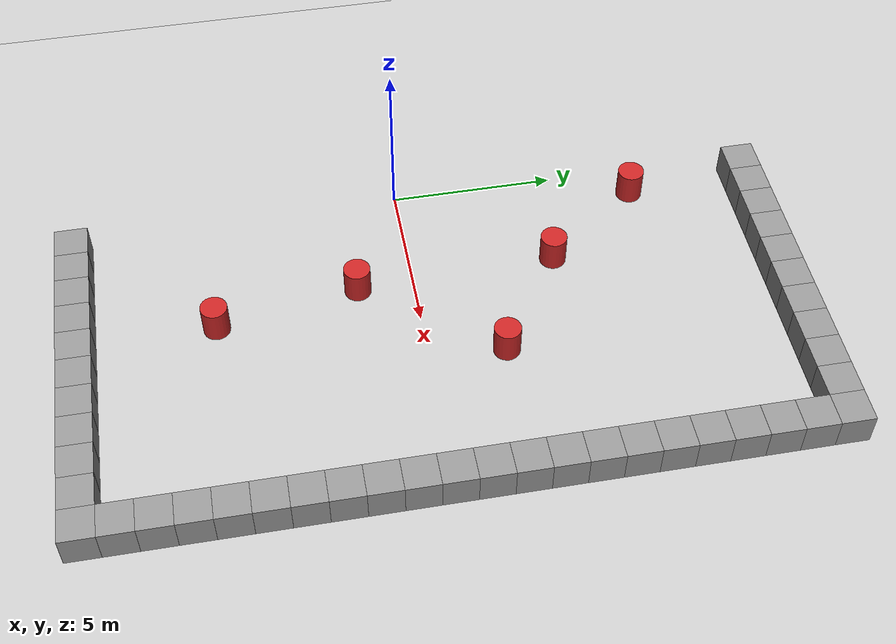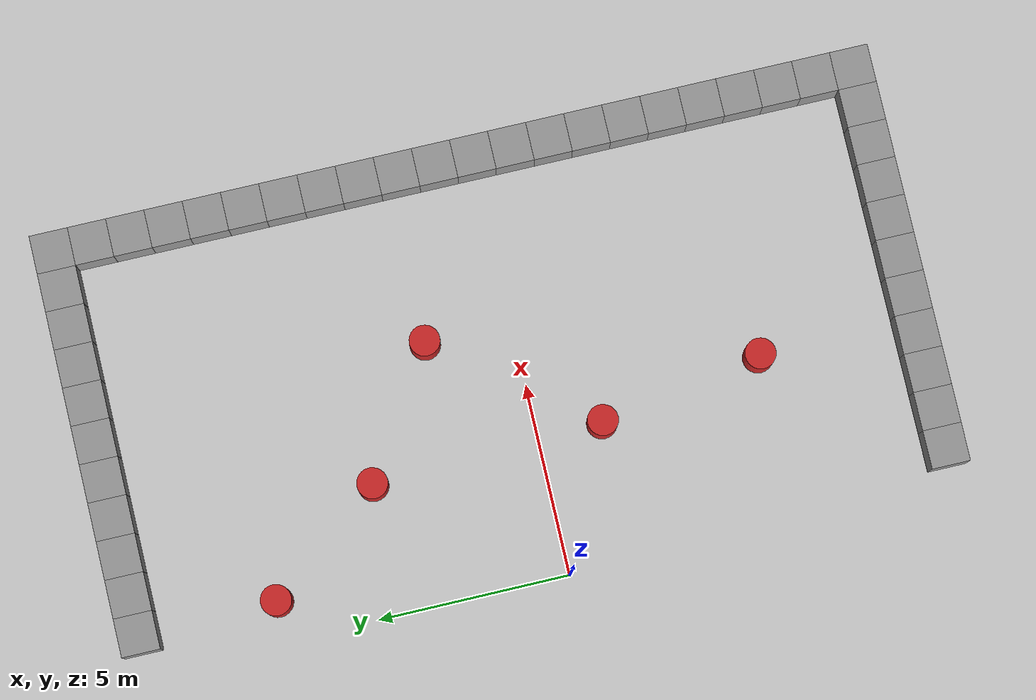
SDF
<sdf version="1.6">
 <world name="default">
  <model name="ground_plane">
   <static>1</static>
   <link name="link">
    <collision name="collision">
     <geometry><plane><normal>0 0 1</normal><size>100 100</size></plane></geometry>
     <surface><friction><ode><mu>100</mu><mu2>50</mu2></ode></friction></surface>
    </collision>
    <visual name="visual">
     <cast_shadows>0</cast_shadows>
     <geometry><plane><normal>0 0 1</normal><size>100 100</size></plane></geometry>
     <material>
      <script><uri>file://media/materials/scripts/gazebo.material</uri><name>Gazebo/Grey</name></script>
     </material>
    </visual>
    <velocity_decay><linear>0</linear><angular>0</angular></velocity_decay>
   </link>
  </model>
  <model name="unit_box_105">
   <pose>1 -10 0.5 0 -0 0</pose>
   <link name="link">
    <inertial>
     <mass>1</mass>
     <inertia><ixx>1</ixx><ixy>0</ixy><ixz>0</ixz><iyy>1</iyy><iyz>0</iyz><izz>1</izz></inertia>
    </inertial>
    <collision name="collision"><geometry><box><size>1 1 1</size></box></geometry></collision>
    <visual name="visual">
     <geometry><box><size>1 1 1</size></box></geometry>
     <material>
      <script><uri>file://media/materials/scripts/gazebo.material</uri><name>Gazebo/Grey</name></script>
     </material>
    </visual>
    <velocity_decay><linear>0</linear><angular>0</angular></velocity_decay>
   </link>
   <static>1</static>
  </model>
  <model name="unit_box_106">
   <pose>2 -10 0.5 0 -0 0</pose>
   <link name="link">
    <inertial>
     <mass>1</mass>
     <inertia><ixx>1</ixx><ixy>0</ixy><ixz>0</ixz><iyy>1</iyy><iyz>0</iyz><izz>1</izz></inertia>
    </inertial>
    <collision name="collision"><geometry><box><size>1 1 1</size></box></geometry></collision>
    <visual name="visual">
     <geometry><box><size>1 1 1</size></box></geometry>
     <material>
      <script><uri>file://media/materials/scripts/gazebo.material</uri><name>Gazebo/Grey</name></script>
     </material>
    </visual>
    <velocity_decay><linear>0</linear><angular>0</angular></velocity_decay>
   </link>
   <static>1</static>
  </model>
  <model name="unit_box_107">
   <pose>3 -10 0.5 0 -0 0</pose>
   <link name="link">
    <inertial>
     <mass>1</mass>
     <inertia><ixx>1</ixx><ixy>0</ixy><ixz>0</ixz><iyy>1</iyy><iyz>0</iyz><izz>1</izz></inertia>
    </inertial>
    <collision name="collision"><geometry><box><size>1 1 1</size></box></geometry></collision>
    <visual name="visual">
     <geometry><box><size>1 1 1</size></box></geometry>
     <material>
      <script><uri>file://media/materials/scripts/gazebo.material</uri><name>Gazebo/Grey</name></script>
     </material>
    </visual>
    <velocity_decay><linear>0</linear><angular>0</angular></velocity_decay>
   </link>
   <static>1</static>
  </model>
  <model name="unit_box_108">
   <pose>4 -10 0.5 0 -0 0</pose>
   <link name="link">
    <inertial>
     <mass>1</mass>
     <inertia><ixx>1</ixx><ixy>0</ixy><ixz>0</ixz><iyy>1</iyy><iyz>0</iyz><izz>1</izz></inertia>
    </inertial>
    <collision name="collision"><geometry><box><size>1 1 1</size></box></geometry></collision>
    <visual name="visual">
     <geometry><box><size>1 1 1</size></box></geometry>
     <material>
      <script><uri>file://media/materials/scripts/gazebo.material</uri><name>Gazebo/Grey</name></script>
     </material>
    </visual>
    <velocity_decay><linear>0</linear><angular>0</angular></velocity_decay>
   </link>
   <static>1</static>
  </model>
  <model name="unit_box_109">
   <pose>5 -10 0.5 0 -0 0</pose>
   <link name="link">
    <inertial>
     <mass>1</mass>
     <inertia><ixx>1</ixx><ixy>0</ixy><ixz>0</ixz><iyy>1</iyy><iyz>0</iyz><izz>1</izz></inertia>
    </inertial>
    <collision name="collision"><geometry><box><size>1 1 1</size></box></geometry></collision>
    <visual name="visual">
     <geometry><box><size>1 1 1</size></box></geometry>
     <material>
      <script><uri>file://media/materials/scripts/gazebo.material</uri><name>Gazebo/Grey</name></script>
     </material>
    </visual>
    <velocity_decay><linear>0</linear><angular>0</angular></velocity_decay>
   </link>
   <static>1</static>
  </model>
  <model name="unit_box_110">
   <pose>6 -10 0.5 0 -0 0</pose>
   <link name="link">
    <inertial>
     <mass>1</mass>
     <inertia><ixx>1</ixx><ixy>0</ixy><ixz>0</ixz><iyy>1</iyy><iyz>0</iyz><izz>1</izz></inertia>
    </inertial>
    <collision name="collision"><geometry><box><size>1 1 1</size></box></geometry></collision>
    <visual name="visual">
     <geometry><box><size>1 1 1</size></box></geometry>
     <material>
      <script><uri>file://media/materials/scripts/gazebo.material</uri><name>Gazebo/Grey</name></script>
     </material>
    </visual>
    <velocity_decay><linear>0</linear><angular>0</angular></velocity_decay>
   </link>
   <static>1</static>
  </model>
  <model name="unit_box_111">
   <pose>7 -10 0.5 0 -0 0</pose>
   <link name="link">
    <inertial>
     <mass>1</mass>
     <inertia><ixx>1</ixx><ixy>0</ixy><ixz>0</ixz><iyy>1</iyy><iyz>0</iyz><izz>1</izz></inertia>
    </inertial>
    <collision name="collision"><geometry><box><size>1 1 1</size></box></geometry></collision>
    <visual name="visual">
     <geometry><box><size>1 1 1</size></box></geometry>
     <material>
      <script><uri>file://media/materials/scripts/gazebo.material</uri><name>Gazebo/Grey</name></script>
     </material>
    </visual>
    <velocity_decay><linear>0</linear><angular>0</angular></velocity_decay>
   </link>
   <static>1</static>
  </model>
  <model name="unit_box_112">
   <pose>8 -10 0.5 0 -0 0</pose>
   <link name="link">
    <inertial>
     <mass>1</mass>
     <inertia><ixx>1</ixx><ixy>0</ixy><ixz>0</ixz><iyy>1</iyy><iyz>0</iyz><izz>1</izz></inertia>
    </inertial>
    <collision name="collision"><geometry><box><size>1 1 1</size></box></geometry></collision>
    <visual name="visual">
     <geometry><box><size>1 1 1</size></box></geometry>
     <material>
      <script><uri>file://media/materials/scripts/gazebo.material</uri><name>Gazebo/Grey</name></script>
     </material>
    </visual>
    <velocity_decay><linear>0</linear><angular>0</angular></velocity_decay>
   </link>
   <static>1</static>
  </model>
  <model name="unit_box_113">
   <pose>9 -10 0.5 0 -0 0</pose>
   <link name="link">
    <inertial>
     <mass>1</mass>
     <inertia><ixx>1</ixx><ixy>0</ixy><ixz>0</ixz><iyy>1</iyy><iyz>0</iyz><izz>1</izz></inertia>
    </inertial>
    <collision name="collision"><geometry><box><size>1 1 1</size></box></geometry></collision>
    <visual name="visual">
     <geometry><box><size>1 1 1</size></box></geometry>
     <material>
      <script><uri>file://media/materials/scripts/gazebo.material</uri><name>Gazebo/Grey</name></script>
     </material>
    </visual>
    <velocity_decay><linear>0</linear><angular>0</angular></velocity_decay>
   </link>
   <static>1</static>
  </model>
  <model name="unit_box_114">
   <pose>10 -10 0.5 0 -0 0</pose>
   <link name="link">
    <inertial>
     <mass>1</mass>
     <inertia><ixx>1</ixx><ixy>0</ixy><ixz>0</ixz><iyy>1</iyy><iyz>0</iyz><izz>1</izz></inertia>
    </inertial>
    <collision name="collision"><geometry><box><size>1 1 1</size></box></geometry></collision>
    <visual name="visual">
     <geometry><box><size>1 1 1</size></box></geometry>
     <material>
      <script><uri>file://media/materials/scripts/gazebo.material</uri><name>Gazebo/Grey</name></script>
     </material>
    </visual>
    <velocity_decay><linear>0</linear><angular>0</angular></velocity_decay>
   </link>
   <static>1</static>
  </model>
  <model name="unit_box_301">
   <pose>11 0 0.5 0 -0 0</pose>
   <link name="link">
    <inertial>
     <mass>1</mass>
     <inertia><ixx>1</ixx><ixy>0</ixy><ixz>0</ixz><iyy>1</iyy><iyz>0</iyz><izz>1</izz></inertia>
    </inertial>
    <collision name="collision"><geometry><box><size>1 1 1</size></box></geometry></collision>
    <visual name="visual">
     <geometry><box><size>1 1 1</size></box></geometry>
     <material>
      <script><uri>file://media/materials/scripts/gazebo.material</uri><name>Gazebo/Grey</name></script>
     </material>
    </visual>
    <velocity_decay><linear>0</linear><angular>0</angular></velocity_decay>
   </link>
   <static>1</static>
  </model>
  <model name="unit_box_150">
   <pose>1 11 0.5 0 -0 0</pose>
   <link name="link">
    <inertial>
     <mass>1</mass>
     <inertia><ixx>1</ixx><ixy>0</ixy><ixz>0</ixz><iyy>1</iyy><iyz>0</iyz><izz>1</izz></inertia>
    </inertial>
    <collision name="collision"><geometry><box><size>1 1 1</size></box></geometry></collision>
    <visual name="visual">
     <geometry><box><size>1 1 1</size></box></geometry>
     <material>
      <script><uri>file://media/materials/scripts/gazebo.material</uri><name>Gazebo/Grey</name></script>
     </material>
    </visual>
    <velocity_decay><linear>0</linear><angular>0</angular></velocity_decay>
   </link>
   <static>1</static>
  </model>
  <model name="unit_box_151">
   <pose>2 11 0.5 0 -0 0</pose>
   <link name="link">
    <inertial>
     <mass>1</mass>
     <inertia><ixx>1</ixx><ixy>0</ixy><ixz>0</ixz><iyy>1</iyy><iyz>0</iyz><izz>1</izz></inertia>
    </inertial>
    <collision name="collision"><geometry><box><size>1 1 1</size></box></geometry></collision>
    <visual name="visual">
     <geometry><box><size>1 1 1</size></box></geometry>
     <material>
      <script><uri>file://media/materials/scripts/gazebo.material</uri><name>Gazebo/Grey</name></script>
     </material>
    </visual>
    <velocity_decay><linear>0</linear><angular>0</angular></velocity_decay>
   </link>
   <static>1</static>
  </model>
  <model name="unit_box_152">
   <pose>3 11 0.5 0 -0 0</pose>
   <link name="link">
    <inertial>
     <mass>1</mass>
     <inertia><ixx>1</ixx><ixy>0</ixy><ixz>0</ixz><iyy>1</iyy><iyz>0</iyz><izz>1</izz></inertia>
    </inertial>
    <collision name="collision"><geometry><box><size>1 1 1</size></box></geometry></collision>
    <visual name="visual">
     <geometry><box><size>1 1 1</size></box></geometry>
     <material>
      <script><uri>file://media/materials/scripts/gazebo.material</uri><name>Gazebo/Grey</name></script>
     </material>
    </visual>
    <velocity_decay><linear>0</linear><angular>0</angular></velocity_decay>
   </link>
   <static>1</static>
  </model>
  <model name="unit_box_153">
   <pose>4 11 0.5 0 -0 0</pose>
   <link name="link">
    <inertial>
     <mass>1</mass>
     <inertia><ixx>1</ixx><ixy>0</ixy><ixz>0</ixz><iyy>1</iyy><iyz>0</iyz><izz>1</izz></inertia>
    </inertial>
    <collision name="collision"><geometry><box><size>1 1 1</size></box></geometry></collision>
    <visual name="visual">
     <geometry><box><size>1 1 1</size></box></geometry>
     <material>
      <script><uri>file://media/materials/scripts/gazebo.material</uri><name>Gazebo/Grey</name></script>
     </material>
    </visual>
    <velocity_decay><linear>0</linear><angular>0</angular></velocity_decay>
   </link>
   <static>1</static>
  </model>
  <model name="unit_box_154">
   <pose>5 11 0.5 0 -0 0</pose>
   <link name="link">
    <inertial>
     <mass>1</mass>
     <inertia><ixx>1</ixx><ixy>0</ixy><ixz>0</ixz><iyy>1</iyy><iyz>0</iyz><izz>1</izz></inertia>
    </inertial>
    <collision name="collision"><geometry><box><size>1 1 1</size></box></geometry></collision>
    <visual name="visual">
     <geometry><box><size>1 1 1</size></box></geometry>
     <material>
      <script><uri>file://media/materials/scripts/gazebo.material</uri><name>Gazebo/Grey</name></script>
     </material>
    </visual>
    <velocity_decay><linear>0</linear><angular>0</angular></velocity_decay>
   </link>
   <static>1</static>
  </model>
  <model name="unit_box_155">
   <pose>6 11 0.5 0 -0 0</pose>
   <link name="link">
    <inertial>
     <mass>1</mass>
     <inertia><ixx>1</ixx><ixy>0</ixy><ixz>0</ixz><iyy>1</iyy><iyz>0</iyz><izz>1</izz></inertia>
    </inertial>
    <collision name="collision"><geometry><box><size>1 1 1</size></box></geometry></collision>
    <visual name="visual">
     <geometry><box><size>1 1 1</size></box></geometry>
     <material>
      <script><uri>file://media/materials/scripts/gazebo.material</uri><name>Gazebo/Grey</name></script>
     </material>
    </visual>
    <velocity_decay><linear>0</linear><angular>0</angular></velocity_decay>
   </link>
   <static>1</static>
  </model>
  <model name="unit_box_156">
   <pose>7 11 0.5 0 -0 0</pose>
   <link name="link">
    <inertial>
     <mass>1</mass>
     <inertia><ixx>1</ixx><ixy>0</ixy><ixz>0</ixz><iyy>1</iyy><iyz>0</iyz><izz>1</izz></inertia>
    </inertial>
    <collision name="collision"><geometry><box><size>1 1 1</size></box></geometry></collision>
    <visual name="visual">
     <geometry><box><size>1 1 1</size></box></geometry>
     <material>
      <script><uri>file://media/materials/scripts/gazebo.material</uri><name>Gazebo/Grey</name></script>
     </material>
    </visual>
    <velocity_decay><linear>0</linear><angular>0</angular></velocity_decay>
   </link>
   <static>1</static>
  </model>
  <model name="unit_box_157">
   <pose>8 11 0.5 0 -0 0</pose>
   <link name="link">
    <inertial>
     <mass>1</mass>
     <inertia><ixx>1</ixx><ixy>0</ixy><ixz>0</ixz><iyy>1</iyy><iyz>0</iyz><izz>1</izz></inertia>
    </inertial>
    <collision name="collision"><geometry><box><size>1 1 1</size></box></geometry></collision>
    <visual name="visual">
     <geometry><box><size>1 1 1</size></box></geometry>
     <material>
      <script><uri>file://media/materials/scripts/gazebo.material</uri><name>Gazebo/Grey</name></script>
     </material>
    </visual>
    <velocity_decay><linear>0</linear><angular>0</angular></velocity_decay>
   </link>
   <static>1</static>
  </model>
  <model name="unit_box_158">
   <pose>9 11 0.5 0 -0 0</pose>
   <link name="link">
    <inertial>
     <mass>1</mass>
     <inertia><ixx>1</ixx><ixy>0</ixy><ixz>0</ixz><iyy>1</iyy><iyz>0</iyz><izz>1</izz></inertia>
    </inertial>
    <collision name="collision"><geometry><box><size>1 1 1</size></box></geometry></collision>
    <visual name="visual">
     <geometry><box><size>1 1 1</size></box></geometry>
     <material>
      <script><uri>file://media/materials/scripts/gazebo.material</uri><name>Gazebo/Grey</name></script>
     </material>
    </visual>
    <velocity_decay><linear>0</linear><angular>0</angular></velocity_decay>
   </link>
   <static>1</static>
  </model>
  <model name="unit_box_159">
   <pose>10 11 0.5 0 -0 0</pose>
   <link name="link">
    <inertial>
     <mass>1</mass>
     <inertia><ixx>1</ixx><ixy>0</ixy><ixz>0</ixz><iyy>1</iyy><iyz>0</iyz><izz>1</izz></inertia>
    </inertial>
    <collision name="collision"><geometry><box><size>1 1 1</size></box></geometry></collision>
    <visual name="visual">
     <geometry><box><size>1 1 1</size></box></geometry>
     <material>
      <script><uri>file://media/materials/scripts/gazebo.material</uri><name>Gazebo/Grey</name></script>
     </material>
    </visual>
    <velocity_decay><linear>0</linear><angular>0</angular></velocity_decay>
   </link>
   <static>1</static>
  </model>
  <model name="unit_box_302">
   <pose>11 11 0.5 0 -0 0</pose>
   <link name="link">
    <inertial>
     <mass>1</mass>
     <inertia><ixx>1</ixx><ixy>0</ixy><ixz>0</ixz><iyy>1</iyy><iyz>0</iyz><izz>1</izz></inertia>
    </inertial>
    <collision name="collision"><geometry><box><size>1 1 1</size></box></geometry></collision>
    <visual name="visual">
     <geometry><box><size>1 1 1</size></box></geometry>
     <material>
      <script><uri>file://media/materials/scripts/gazebo.material</uri><name>Gazebo/Grey</name></script>
     </material>
    </visual>
    <velocity_decay><linear>0</linear><angular>0</angular></velocity_decay>
   </link>
   <static>1</static>
  </model>
  <model name="unit_box_160">
   <pose>11 1 0.5 0 -0 0</pose>
   <link name="link">
    <inertial>
     <mass>1</mass>
     <inertia><ixx>1</ixx><ixy>0</ixy><ixz>0</ixz><iyy>1</iyy><iyz>0</iyz><izz>1</izz></inertia>
    </inertial>
    <collision name="collision"><geometry><box><size>1 1 1</size></box></geometry></collision>
    <visual name="visual">
     <geometry><box><size>1 1 1</size></box></geometry>
     <material>
      <script><uri>file://media/materials/scripts/gazebo.material</uri><name>Gazebo/Grey</name></script>
     </material>
    </visual>
    <velocity_decay><linear>0</linear><angular>0</angular></velocity_decay>
   </link>
   <static>1</static>
  </model>
  <model name="unit_box_161">
   <pose>11 4 0.5 0 -0 0</pose>
   <link name="link">
    <inertial>
     <mass>1</mass>
     <inertia><ixx>1</ixx><ixy>0</ixy><ixz>0</ixz><iyy>1</iyy><iyz>0</iyz><izz>1</izz></inertia>
    </inertial>
    <collision name="collision"><geometry><box><size>1 1 1</size></box></geometry></collision>
    <visual name="visual">
     <geometry><box><size>1 1 1</size></box></geometry>
     <material>
      <script><uri>file://media/materials/scripts/gazebo.material</uri><name>Gazebo/Grey</name></script>
     </material>
    </visual>
    <velocity_decay><linear>0</linear><angular>0</angular></velocity_decay>
   </link>
   <static>1</static>
  </model>
  <model name="unit_box_162">
   <pose>11 3 0.5 0 -0 0</pose>
   <link name="link">
    <inertial>
     <mass>1</mass>
     <inertia><ixx>1</ixx><ixy>0</ixy><ixz>0</ixz><iyy>1</iyy><iyz>0</iyz><izz>1</izz></inertia>
    </inertial>
    <collision name="collision"><geometry><box><size>1 1 1</size></box></geometry></collision>
    <visual name="visual">
     <geometry><box><size>1 1 1</size></box></geometry>
     <material>
      <script><uri>file://media/materials/scripts/gazebo.material</uri><name>Gazebo/Grey</name></script>
     </material>
    </visual>
    <velocity_decay><linear>0</linear><angular>0</angular></velocity_decay>
   </link>
   <static>1</static>
  </model>
  <model name="unit_box_182">
   <pose>11 2 0.5 0 -0 0</pose>
   <link name="link">
    <inertial>
     <mass>1</mass>
     <inertia><ixx>1</ixx><ixy>0</ixy><ixz>0</ixz><iyy>1</iyy><iyz>0</iyz><izz>1</izz></inertia>
    </inertial>
    <collision name="collision"><geometry><box><size>1 1 1</size></box></geometry></collision>
    <visual name="visual">
     <geometry><box><size>1 1 1</size></box></geometry>
     <material>
      <script><uri>file://media/materials/scripts/gazebo.material</uri><name>Gazebo/Grey</name></script>
     </material>
    </visual>
    <velocity_decay><linear>0</linear><angular>0</angular></velocity_decay>
   </link>
   <static>1</static>
  </model>
  <model name="unit_box_188">
   <pose>11 5 0.5 0 -0 0</pose>
   <link name="link">
    <inertial>
     <mass>1</mass>
     <inertia><ixx>1</ixx><ixy>0</ixy><ixz>0</ixz><iyy>1</iyy><iyz>0</iyz><izz>1</izz></inertia>
    </inertial>
    <collision name="collision"><geometry><box><size>1 1 1</size></box></geometry></collision>
    <visual name="visual">
     <geometry><box><size>1 1 1</size></box></geometry>
     <material>
      <script><uri>file://media/materials/scripts/gazebo.material</uri><name>Gazebo/Grey</name></script>
     </material>
    </visual>
    <velocity_decay><linear>0</linear><angular>0</angular></velocity_decay>
   </link>
   <static>1</static>
  </model>
  <model name="unit_box_189">
   <pose>11 6 0.5 0 -0 0</pose>
   <link name="link">
    <inertial>
     <mass>1</mass>
     <inertia><ixx>1</ixx><ixy>0</ixy><ixz>0</ixz><iyy>1</iyy><iyz>0</iyz><izz>1</izz></inertia>
    </inertial>
    <collision name="collision"><geometry><box><size>1 1 1</size></box></geometry></collision>
    <visual name="visual">
     <geometry><box><size>1 1 1</size></box></geometry>
     <material>
      <script><uri>file://media/materials/scripts/gazebo.material</uri><name>Gazebo/Grey</name></script>
     </material>
    </visual>
    <velocity_decay><linear>0</linear><angular>0</angular></velocity_decay>
   </link>
   <static>1</static>
  </model>
  <model name="unit_box_190">
   <pose>11 -9 0.5 0 -0 0</pose>
   <link name="link">
    <inertial>
     <mass>1</mass>
     <inertia><ixx>1</ixx><ixy>0</ixy><ixz>0</ixz><iyy>1</iyy><iyz>0</iyz><izz>1</izz></inertia>
    </inertial>
    <collision name="collision"><geometry><box><size>1 1 1</size></box></geometry></collision>
    <visual name="visual">
     <geometry><box><size>1 1 1</size></box></geometry>
     <material>
      <script><uri>file://media/materials/scripts/gazebo.material</uri><name>Gazebo/Grey</name></script>
     </material>
    </visual>
    <velocity_decay><linear>0</linear><angular>0</angular></velocity_decay>
   </link>
   <static>1</static>
  </model>
  <model name="unit_box_191">
   <pose>11 -10 0.5 0 -0 0</pose>
   <link name="link">
    <inertial>
     <mass>1</mass>
     <inertia><ixx>1</ixx><ixy>0</ixy><ixz>0</ixz><iyy>1</iyy><iyz>0</iyz><izz>1</izz></inertia>
    </inertial>
    <collision name="collision"><geometry><box><size>1 1 1</size></box></geometry></collision>
    <visual name="visual">
     <geometry><box><size>1 1 1</size></box></geometry>
     <material>
      <script><uri>file://media/materials/scripts/gazebo.material</uri><name>Gazebo/Grey</name></script>
     </material>
    </visual>
    <velocity_decay><linear>0</linear><angular>0</angular></velocity_decay>
   </link>
   <static>1</static>
  </model>
  <model name="unit_box_192">
   <pose>11 -8 0.5 0 -0 0</pose>
   <link name="link">
    <inertial>
     <mass>1</mass>
     <inertia><ixx>1</ixx><ixy>0</ixy><ixz>0</ixz><iyy>1</iyy><iyz>0</iyz><izz>1</izz></inertia>
    </inertial>
    <collision name="collision"><geometry><box><size>1 1 1</size></box></geometry></collision>
    <visual name="visual">
     <geometry><box><size>1 1 1</size></box></geometry>
     <material>
      <script><uri>file://media/materials/scripts/gazebo.material</uri><name>Gazebo/Grey</name></script>
     </material>
    </visual>
    <velocity_decay><linear>0</linear><angular>0</angular></velocity_decay>
   </link>
   <static>1</static>
  </model>
  <model name="unit_box_194">
   <pose>11 -6 0.5 0 -0 0</pose>
   <link name="link">
    <inertial>
     <mass>1</mass>
     <inertia><ixx>1</ixx><ixy>0</ixy><ixz>0</ixz><iyy>1</iyy><iyz>0</iyz><izz>1</izz></inertia>
    </inertial>
    <collision name="collision"><geometry><box><size>1 1 1</size></box></geometry></collision>
    <visual name="visual">
     <geometry><box><size>1 1 1</size></box></geometry>
     <material>
      <script><uri>file://media/materials/scripts/gazebo.material</uri><name>Gazebo/Grey</name></script>
     </material>
    </visual>
    <velocity_decay><linear>0</linear><angular>0</angular></velocity_decay>
   </link>
   <static>1</static>
  </model>
  <model name="unit_box_195">
   <pose>11 -7 0.5 0 -0 0</pose>
   <link name="link">
    <inertial>
     <mass>1</mass>
     <inertia><ixx>1</ixx><ixy>0</ixy><ixz>0</ixz><iyy>1</iyy><iyz>0</iyz><izz>1</izz></inertia>
    </inertial>
    <collision name="collision"><geometry><box><size>1 1 1</size></box></geometry></collision>
    <visual name="visual">
     <geometry><box><size>1 1 1</size></box></geometry>
     <material>
      <script><uri>file://media/materials/scripts/gazebo.material</uri><name>Gazebo/Grey</name></script>
     </material>
    </visual>
    <velocity_decay><linear>0</linear><angular>0</angular></velocity_decay>
   </link>
   <static>1</static>
  </model>
  <model name="unit_box_196">
   <pose>11 -5 0.5 0 -0 0</pose>
   <link name="link">
    <inertial>
     <mass>1</mass>
     <inertia><ixx>1</ixx><ixy>0</ixy><ixz>0</ixz><iyy>1</iyy><iyz>0</iyz><izz>1</izz></inertia>
    </inertial>
    <collision name="collision"><geometry><box><size>1 1 1</size></box></geometry></collision>
    <visual name="visual">
     <geometry><box><size>1 1 1</size></box></geometry>
     <material>
      <script><uri>file://media/materials/scripts/gazebo.material</uri><name>Gazebo/Grey</name></script>
     </material>
    </visual>
    <velocity_decay><linear>0</linear><angular>0</angular></velocity_decay>
   </link>
   <static>1</static>
  </model>
  <model name="unit_box_197">
   <pose>11 -4 0.5 0 -0 0</pose>
   <link name="link">
    <inertial>
     <mass>1</mass>
     <inertia><ixx>1</ixx><ixy>0</ixy><ixz>0</ixz><iyy>1</iyy><iyz>0</iyz><izz>1</izz></inertia>
    </inertial>
    <collision name="collision"><geometry><box><size>1 1 1</size></box></geometry></collision>
    <visual name="visual">
     <geometry><box><size>1 1 1</size></box></geometry>
     <material>
      <script><uri>file://media/materials/scripts/gazebo.material</uri><name>Gazebo/Grey</name></script>
     </material>
    </visual>
    <velocity_decay><linear>0</linear><angular>0</angular></velocity_decay>
   </link>
   <static>1</static>
  </model>
  <model name="unit_box_198">
   <pose>11 -3 0.5 0 -0 0</pose>
   <link name="link">
    <inertial>
     <mass>1</mass>
     <inertia><ixx>1</ixx><ixy>0</ixy><ixz>0</ixz><iyy>1</iyy><iyz>0</iyz><izz>1</izz></inertia>
    </inertial>
    <collision name="collision"><geometry><box><size>1 1 1</size></box></geometry></collision>
    <visual name="visual">
     <geometry><box><size>1 1 1</size></box></geometry>
     <material>
      <script><uri>file://media/materials/scripts/gazebo.material</uri><name>Gazebo/Grey</name></script>
     </material>
    </visual>
    <velocity_decay><linear>0</linear><angular>0</angular></velocity_decay>
   </link>
   <static>1</static>
  </model>
  <model name="unit_box_199">
   <pose>11 -2 0.5 0 -0 0</pose>
   <link name="link">
    <inertial>
     <mass>1</mass>
     <inertia><ixx>1</ixx><ixy>0</ixy><ixz>0</ixz><iyy>1</iyy><iyz>0</iyz><izz>1</izz></inertia>
    </inertial>
    <collision name="collision"><geometry><box><size>1 1 1</size></box></geometry></collision>
    <visual name="visual">
     <geometry><box><size>1 1 1</size></box></geometry>
     <material>
      <script><uri>file://media/materials/scripts/gazebo.material</uri><name>Gazebo/Grey</name></script>
     </material>
    </visual>
    <velocity_decay><linear>0</linear><angular>0</angular></velocity_decay>
   </link>
   <static>1</static>
  </model>
  <model name="unit_box_204">
   <pose>11 -1 0.5 0 -0 0</pose>
   <link name="link">
    <inertial>
     <mass>1</mass>
     <inertia><ixx>1</ixx><ixy>0</ixy><ixz>0</ixz><iyy>1</iyy><iyz>0</iyz><izz>1</izz></inertia>
    </inertial>
    <collision name="collision"><geometry><box><size>1 1 1</size></box></geometry></collision>
    <visual name="visual">
     <geometry><box><size>1 1 1</size></box></geometry>
     <material>
      <script><uri>file://media/materials/scripts/gazebo.material</uri><name>Gazebo/Grey</name></script>
     </material>
    </visual>
    <velocity_decay><linear>0</linear><angular>0</angular></velocity_decay>
   </link>
   <static>1</static>
  </model>
  <model name="unit_box_205">
   <pose>11 7 0.5 0 -0 0</pose>
   <link name="link">
    <inertial>
     <mass>1</mass>
     <inertia><ixx>1</ixx><ixy>0</ixy><ixz>0</ixz><iyy>1</iyy><iyz>0</iyz><izz>1</izz></inertia>
    </inertial>
    <collision name="collision"><geometry><box><size>1 1 1</size></box></geometry></collision>
    <visual name="visual">
     <geometry><box><size>1 1 1</size></box></geometry>
     <material>
      <script><uri>file://media/materials/scripts/gazebo.material</uri><name>Gazebo/Grey</name></script>
     </material>
    </visual>
    <velocity_decay><linear>0</linear><angular>0</angular></velocity_decay>
   </link>
   <static>1</static>
  </model>
  <model name="unit_box_206">
   <pose>11 8 0.5 0 -0 0</pose>
   <link name="link">
    <inertial>
     <mass>1</mass>
     <inertia><ixx>1</ixx><ixy>0</ixy><ixz>0</ixz><iyy>1</iyy><iyz>0</iyz><izz>1</izz></inertia>
    </inertial>
    <collision name="collision"><geometry><box><size>1 1 1</size></box></geometry></collision>
    <visual name="visual">
     <geometry><box><size>1 1 1</size></box></geometry>
     <material>
      <script><uri>file://media/materials/scripts/gazebo.material</uri><name>Gazebo/Grey</name></script>
     </material>
    </visual>
    <velocity_decay><linear>0</linear><angular>0</angular></velocity_decay>
   </link>
   <static>1</static>
  </model>
  <model name="unit_box_207">
   <pose>11 9 0.5 0 -0 0</pose>
   <link name="link">
    <inertial>
     <mass>1</mass>
     <inertia><ixx>1</ixx><ixy>0</ixy><ixz>0</ixz><iyy>1</iyy><iyz>0</iyz><izz>1</izz></inertia>
    </inertial>
    <collision name="collision"><geometry><box><size>1 1 1</size></box></geometry></collision>
    <visual name="visual">
     <geometry><box><size>1 1 1</size></box></geometry>
     <material>
      <script><uri>file://media/materials/scripts/gazebo.material</uri><name>Gazebo/Grey</name></script>
     </material>
    </visual>
    <velocity_decay><linear>0</linear><angular>0</angular></velocity_decay>
   </link>
   <static>1</static>
  </model>
  <model name="unit_box_208">
   <pose>11 10 0.5 0 -0 0</pose>
   <link name="link">
    <inertial>
     <mass>1</mass>
     <inertia><ixx>1</ixx><ixy>0</ixy><ixz>0</ixz><iyy>1</iyy><iyz>0</iyz><izz>1</izz></inertia>
    </inertial>
    <collision name="collision"><geometry><box><size>1 1 1</size></box></geometry></collision>
    <visual name="visual">
     <geometry><box><size>1 1 1</size></box></geometry>
     <material>
      <script><uri>file://media/materials/scripts/gazebo.material</uri><name>Gazebo/Grey</name></script>
     </material>
    </visual>
    <velocity_decay><linear>0</linear><angular>0</angular></velocity_decay>
   </link>
   <static>1</static>
  </model>
  <model name="unit_cylinder_1">
   <pose>4.35217 -5.96485 0.5 0 -0 0</pose>
   <link name="link">
    <inertial>
     <mass>1</mass>
     <inertia><ixx>1</ixx><ixy>0</ixy><ixz>0</ixz><iyy>1</iyy><iyz>0</iyz><izz>1</izz></inertia>
    </inertial>
    <collision name="collision">
     <geometry><cylinder><radius>0.4</radius><length>1</length></cylinder></geometry>
    </collision>
    <visual name="visual">
     <geometry><cylinder><radius>0.4</radius><length>1</length></cylinder></geometry>
     <material>
      <script><uri>file://media/materials/scripts/gazebo.material</uri><name>Gazebo/Red</name></script>
     </material>
    </visual>
    <velocity_decay><linear>0</linear><angular>0</angular></velocity_decay>
   </link>
   <static>1</static>
  </model>
  <model name="unit_cylinder_2">
   <pose>1.03617 7.39903 0.5 0 -0 0</pose>
   <link name="link">
    <inertial>
     <mass>1</mass>
     <inertia><ixx>1</ixx><ixy>0</ixy><ixz>0</ixz><iyy>1</iyy><iyz>0</iyz><izz>1</izz></inertia>
    </inertial>
    <collision name="collision">
     <geometry><cylinder><radius>0.4</radius><length>1</length></cylinder></geometry>
    </collision>
    <visual name="visual">
     <geometry><cylinder><radius>0.4</radius><length>1</length></cylinder></geometry>
     <material>
      <script><uri>file://media/materials/scripts/gazebo.material</uri><name>Gazebo/Red</name></script>
     </material>
    </visual>
    <velocity_decay><linear>0</linear><angular>0</angular></velocity_decay>
   </link>
   <static>1</static>
  </model>
  <model name="unit_cylinder_3">
   <pose>3.36597 4.37626 0.5 0 -0 0</pose>
   <link name="link">
    <inertial>
     <mass>1</mass>
     <inertia><ixx>1</ixx><ixy>0</ixy><ixz>0</ixz><iyy>1</iyy><iyz>0</iyz><izz>1</izz></inertia>
    </inertial>
    <collision name="collision">
     <geometry><cylinder><radius>0.4</radius><length>1</length></cylinder></geometry>
    </collision>
    <visual name="visual">
     <geometry><cylinder><radius>0.4</radius><length>1</length></cylinder></geometry>
     <material>
      <script><uri>file://media/materials/scripts/gazebo.material</uri><name>Gazebo/Red</name></script>
     </material>
    </visual>
    <velocity_decay><linear>0</linear><angular>0</angular></velocity_decay>
   </link>
   <static>1</static>
  </model>
  <model name="unit_cylinder_7">
   <pose>6.60544 2.27345 0.5 0 -0 0</pose>
   <link name="link">
    <inertial>
     <mass>1</mass>
     <inertia><ixx>1</ixx><ixy>0</ixy><ixz>0</ixz><iyy>1</iyy><iyz>0</iyz><izz>1</izz></inertia>
    </inertial>
    <collision name="collision">
     <geometry><cylinder><radius>0.4</radius><length>1</length></cylinder></geometry>
    </collision>
    <visual name="visual">
     <geometry><cylinder><radius>0.4</radius><length>1</length></cylinder></geometry>
     <material>
      <script><uri>file://media/materials/scripts/gazebo.material</uri><name>Gazebo/Red</name></script>
     </material>
    </visual>
    <velocity_decay><linear>0</linear><angular>0</angular></velocity_decay>
   </link>
   <static>1</static>
  </model>
  <model name="unit_cylinder_8">
   <pose>3.60662 -1.6756 0.5 0 -0 0</pose>
   <link name="link">
    <inertial>
     <mass>1</mass>
     <inertia><ixx>1</ixx><ixy>0</ixy><ixz>0</ixz><iyy>1</iyy><iyz>0</iyz><izz>1</izz></inertia>
    </inertial>
    <collision name="collision">
     <geometry><cylinder><radius>0.4</radius><length>1</length></cylinder></geometry>
    </collision>
    <visual name="visual">
     <geometry><cylinder><radius>0.4</radius><length>1</length></cylinder></geometry>
     <material>
      <script><uri>file://media/materials/scripts/gazebo.material</uri><name>Gazebo/Red</name></script>
     </material>
    </visual>
    <velocity_decay><linear>0</linear><angular>0</angular></velocity_decay>
   </link>
   <static>1</static>
  </model>
 </world>
</sdf>
